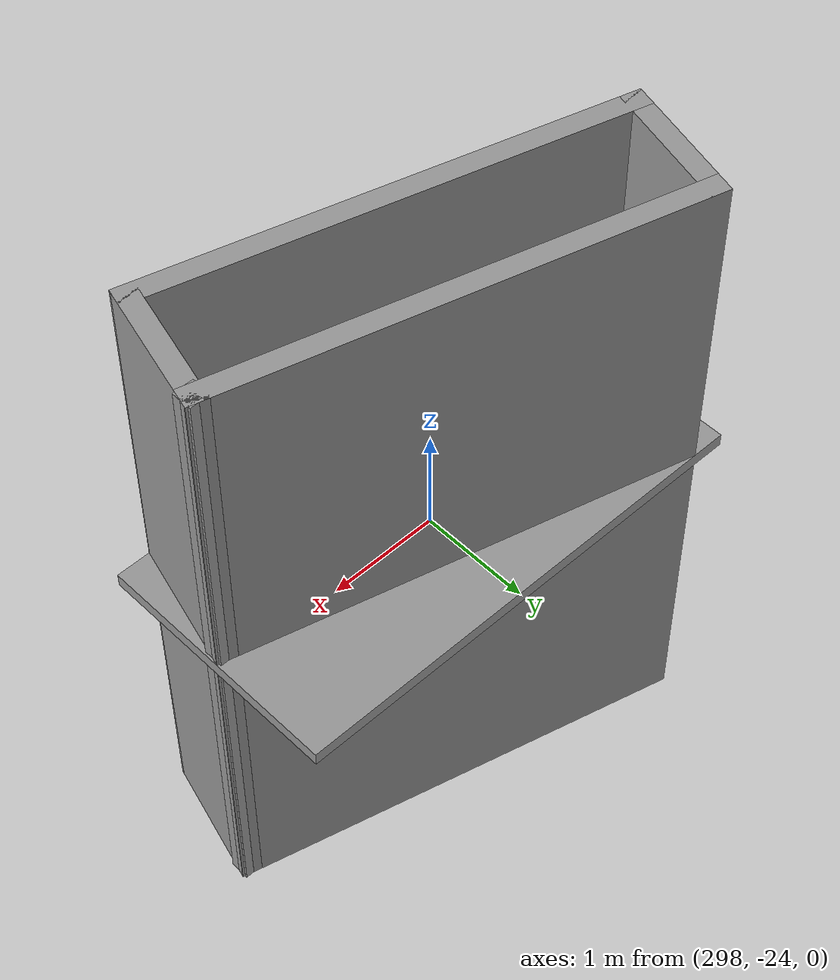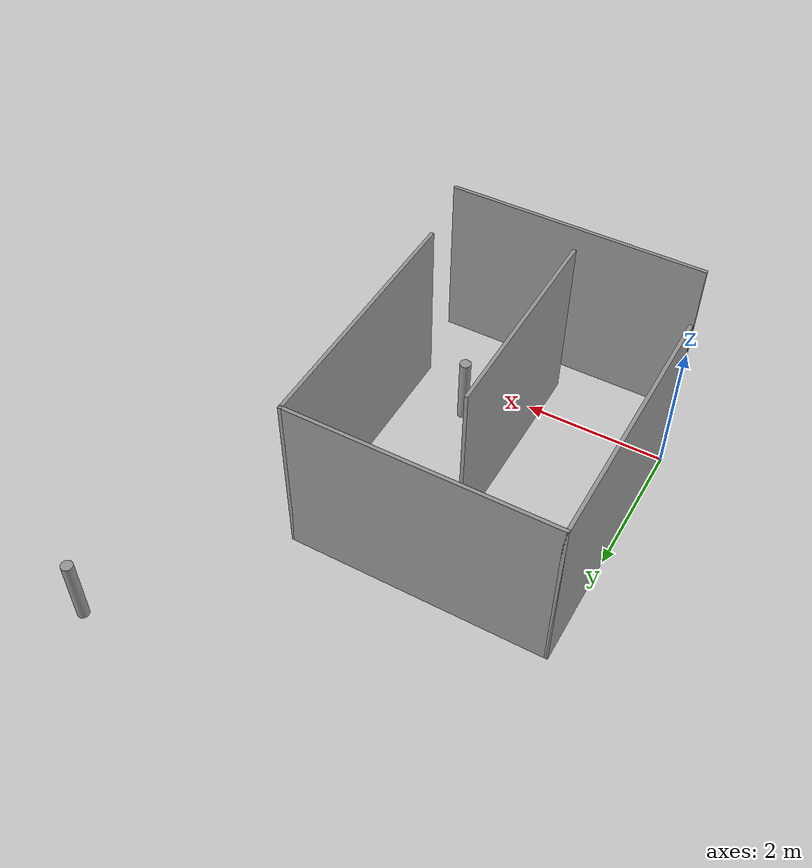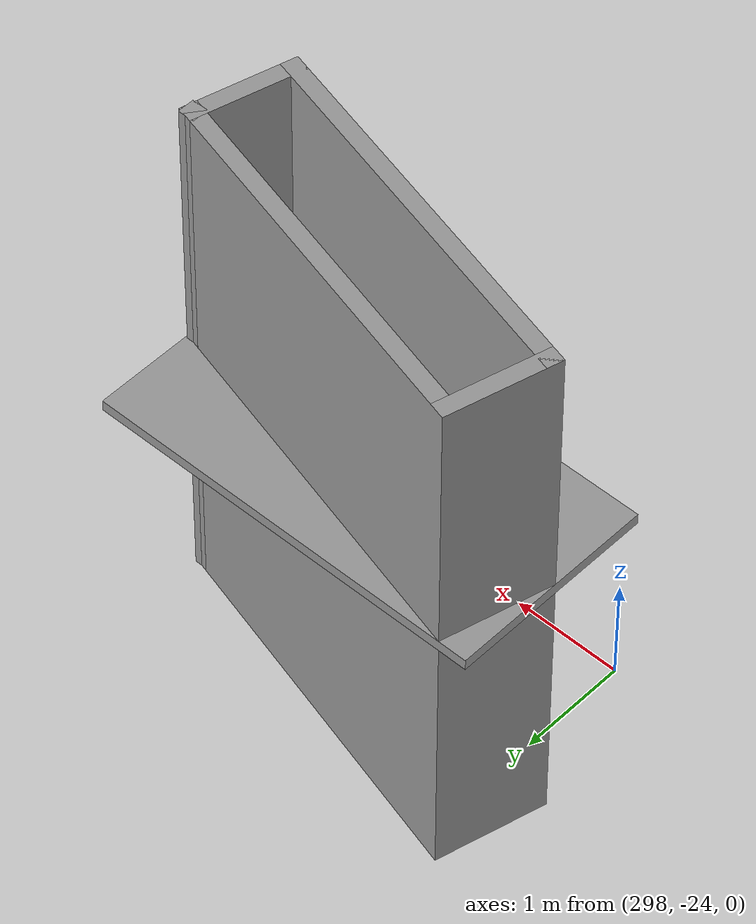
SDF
<sdf version="1.7">
 <world name="default">
  <light name="sun" type="directional">
   <pose>0 0 10 0 -0 0</pose>
   <diffuse>0.8 0.8 0.8 1</diffuse>
   <specular>0.2 0.2 0.2 1</specular>
   <attenuation>
    <range>1000</range>
    <constant>0.9</constant>
    <linear>0.01</linear>
    <quadratic>0.001</quadratic>
   </attenuation>
   <direction>-0.5 0.1 -0.9</direction>
   <spot><inner_angle>0</inner_angle><outer_angle>0</outer_angle><falloff>0</falloff></spot>
  </light>
  <model name="ground_plane">
   <static>1</static>
   <link name="link">
    <collision name="collision">
     <geometry><plane><normal>0 0 1</normal><size>100 100</size></plane></geometry>
     <surface>
      <contact><collide_bitmask>65535</collide_bitmask></contact>
      <friction><ode><mu>100</mu><mu2>50</mu2></ode></friction>
     </surface>
    </collision>
    <visual name="visual">
     <cast_shadows>0</cast_shadows>
     <geometry><plane><normal>0 0 1</normal><size>100 100</size></plane></geometry>
     <material>
      <script><uri>file://media/materials/scripts/gazebo.material</uri><name>Gazebo/Grey</name></script>
     </material>
    </visual>
   </link>
  </model>
  <gravity>0 0 -9.8</gravity>
  <magnetic_field>6e-06 2.3e-05 -4.2e-05</magnetic_field>
  <atmosphere type="adiabatic"/>
  <physics type="ode">
   <max_step_size>0.001</max_step_size>
   <real_time_factor>1</real_time_factor>
   <real_time_update_rate>1000</real_time_update_rate>
  </physics>
  <scene><ambient>0.4 0.4 0.4 1</ambient><background>0.7 0.7 0.7 1</background><shadows>1</shadows></scene>
  <audio><device>default</device></audio>
  <spherical_coordinates>
   <surface_model>EARTH_WGS84</surface_model>
   <latitude_deg>0</latitude_deg>
   <longitude_deg>0</longitude_deg>
   <elevation>0</elevation>
   <heading_deg>0</heading_deg>
  </spherical_coordinates>
  <model name="Untitled">
   <pose>299.349 -20.0463 0 0 -0 0</pose>
   <link name="Floor_0">
    <collision name="Floor_0_Collision">
     <geometry><box><size>3.63956 1.87179 0.1</size></box></geometry>
     <pose>0 0 0.05 0 -0 0</pose>
    </collision>
    <visual name="Floor_0_Visual">
     <pose>0 0 0.05 0 -0 0</pose>
     <geometry><box><size>3.63956 1.87179 0.1</size></box></geometry>
     <material>
      <script><uri>file://media/materials/scripts/gazebo.material</uri><name>Gazebo/Grey</name></script>
      <ambient>1 1 1 1</ambient>
     </material>
     <meta><layer>1</layer></meta>
    </visual>
    <pose>-0 -2.59055 2.5 0 -0 0</pose>
   </link>
   <link name="Wall_0">
    <collision name="Wall_0_Collision">
     <geometry><box><size>3.5 0.15 2.5</size></box></geometry>
     <pose>0 0 1.25 0 -0 0</pose>
    </collision>
    <visual name="Wall_0_Visual">
     <pose>0 0 1.25 0 -0 0</pose>
     <geometry><box><size>3.5 0.15 2.5</size></box></geometry>
     <material>
      <script><uri>file://media/materials/scripts/gazebo.material</uri><name>Gazebo/Grey</name></script>
      <ambient>1 1 1 1</ambient>
     </material>
     <meta><layer>0</layer></meta>
    </visual>
    <pose>0.109998 -2.18003 0 0 -0 2.87979</pose>
   </link>
   <link name="Wall_1">
    <collision name="Wall_1_Collision">
     <geometry><box><size>1 0.15 2.5</size></box></geometry>
     <pose>0 0 1.25 0 -0 0</pose>
    </collision>
    <visual name="Wall_1_Visual">
     <pose>0 0 1.25 0 -0 0</pose>
     <geometry><box><size>1 0.15 2.5</size></box></geometry>
     <material>
      <script><uri>file://media/materials/scripts/gazebo.material</uri><name>Gazebo/Grey</name></script>
      <ambient>1 1 1 1</ambient>
     </material>
     <meta><layer>0</layer></meta>
    </visual>
    <pose>-1.61793 -2.15703 0 0 -0 -1.8326</pose>
   </link>
   <link name="Wall_10">
    <collision name="Wall_10_Collision">
     <geometry><box><size>0.15 0.15 2.5</size></box></geometry>
     <pose>0 0 1.25 0 -0 0</pose>
    </collision>
    <visual name="Wall_10_Visual">
     <pose>0 0 1.25 0 -0 0</pose>
     <geometry><box><size>0.15 0.15 2.5</size></box></geometry>
     <material>
      <script><uri>file://media/materials/scripts/gazebo.material</uri><name>Gazebo/Grey</name></script>
      <ambient>1 1 1 1</ambient>
     </material>
     <meta><layer>1</layer></meta>
    </visual>
    <pose>1.72792 -2.61355 2.5 0 -0 0</pose>
   </link>
   <link name="Wall_2">
    <collision name="Wall_2_Collision">
     <geometry><box><size>3.5 0.15 2.5</size></box></geometry>
     <pose>0 0 1.25 0 -0 0</pose>
    </collision>
    <visual name="Wall_2_Visual">
     <pose>0 0 1.25 0 -0 0</pose>
     <geometry><box><size>3.5 0.15 2.5</size></box></geometry>
     <material>
      <script><uri>file://media/materials/scripts/gazebo.material</uri><name>Gazebo/Grey</name></script>
      <ambient>1 1 1 1</ambient>
     </material>
     <meta><layer>0</layer></meta>
    </visual>
    <pose>-0.109998 -3.00107 0 0 -0 -0.261799</pose>
   </link>
   <link name="Wall_3">
    <collision name="Wall_3_Collision">
     <geometry><box><size>1 0.15 2.5</size></box></geometry>
     <pose>0 0 1.25 0 -0 0</pose>
    </collision>
    <visual name="Wall_3_Visual">
     <pose>0 0 1.25 0 -0 0</pose>
     <geometry><box><size>1 0.15 2.5</size></box></geometry>
     <material>
      <script><uri>file://media/materials/scripts/gazebo.material</uri><name>Gazebo/Grey</name></script>
      <ambient>1 1 1 1</ambient>
     </material>
     <meta><layer>0</layer></meta>
    </visual>
    <pose>1.61793 -3.02407 0 0 -0 1.309</pose>
   </link>
   <link name="Wall_4">
    <collision name="Wall_4_Collision">
     <geometry><box><size>0.15 0.15 2.5</size></box></geometry>
     <pose>0 0 1.25 0 -0 0</pose>
    </collision>
    <visual name="Wall_4_Visual">
     <pose>0 0 1.25 0 -0 0</pose>
     <geometry><box><size>0.15 0.15 2.5</size></box></geometry>
     <material>
      <script><uri>file://media/materials/scripts/gazebo.material</uri><name>Gazebo/Grey</name></script>
      <ambient>1 1 1 1</ambient>
     </material>
     <meta><layer>0</layer></meta>
    </visual>
    <pose>1.72792 -2.61355 0 0 -0 0</pose>
   </link>
   <link name="Wall_6">
    <collision name="Wall_6_Collision">
     <geometry><box><size>3.5 0.15 2.5</size></box></geometry>
     <pose>0 0 1.25 0 -0 0</pose>
    </collision>
    <visual name="Wall_6_Visual">
     <pose>0 0 1.25 0 -0 0</pose>
     <geometry><box><size>3.5 0.15 2.5</size></box></geometry>
     <material>
      <script><uri>file://media/materials/scripts/gazebo.material</uri><name>Gazebo/Grey</name></script>
      <ambient>1 1 1 1</ambient>
     </material>
     <meta><layer>1</layer></meta>
    </visual>
    <pose>0.109998 -2.18003 2.5 0 -0 2.87979</pose>
   </link>
   <link name="Wall_7">
    <collision name="Wall_7_Collision">
     <geometry><box><size>1 0.15 2.5</size></box></geometry>
     <pose>0 0 1.25 0 -0 0</pose>
    </collision>
    <visual name="Wall_7_Visual">
     <pose>0 0 1.25 0 -0 0</pose>
     <geometry><box><size>1 0.15 2.5</size></box></geometry>
     <material>
      <script><uri>file://media/materials/scripts/gazebo.material</uri><name>Gazebo/Grey</name></script>
      <ambient>1 1 1 1</ambient>
     </material>
     <meta><layer>1</layer></meta>
    </visual>
    <pose>-1.61793 -2.15703 2.5 0 -0 -1.8326</pose>
   </link>
   <link name="Wall_8">
    <collision name="Wall_8_Collision">
     <geometry><box><size>3.5 0.15 2.5</size></box></geometry>
     <pose>0 0 1.25 0 -0 0</pose>
    </collision>
    <visual name="Wall_8_Visual">
     <pose>0 0 1.25 0 -0 0</pose>
     <geometry><box><size>3.5 0.15 2.5</size></box></geometry>
     <material>
      <script><uri>file://media/materials/scripts/gazebo.material</uri><name>Gazebo/Grey</name></script>
      <ambient>1 1 1 1</ambient>
     </material>
     <meta><layer>1</layer></meta>
    </visual>
    <pose>-0.109998 -3.00107 2.5 0 -0 -0.261799</pose>
   </link>
   <link name="Wall_9">
    <collision name="Wall_9_Collision">
     <geometry><box><size>1 0.15 2.5</size></box></geometry>
     <pose>0 0 1.25 0 -0 0</pose>
    </collision>
    <visual name="Wall_9_Visual">
     <pose>0 0 1.25 0 -0 0</pose>
     <geometry><box><size>1 0.15 2.5</size></box></geometry>
     <material>
      <script><uri>file://media/materials/scripts/gazebo.material</uri><name>Gazebo/Grey</name></script>
      <ambient>1 1 1 1</ambient>
     </material>
     <meta><layer>1</layer></meta>
    </visual>
    <pose>1.61793 -3.02407 2.5 0 -0 1.309</pose>
   </link>
   <static>1</static>
  </model>
  <model name="Untitled_0_0">
   <link name="Wall_17">
    <pose>0 2.11 0 0 -0 0</pose>
    <visual name="Wall_17_Visual">
     <pose>0 0 1.25 0 -0 0</pose>
     <geometry><box><size>3.66 0.05 2.5</size></box></geometry>
     <material>
      <script><uri>file://media/materials/scripts/gazebo.material</uri><name>Gazebo/Grey</name></script>
      <ambient>1 1 1 1</ambient>
      <shader type="pixel"/>
     </material>
     <meta><layer>0</layer></meta>
    </visual>
    <collision name="Wall_17_Collision">
     <pose>0 0 1.25 0 -0 0</pose>
     <geometry><box><size>3.66 0.05 2.5</size></box></geometry>
     <surface>
      <friction>
       <ode><mu>1</mu><mu2>1</mu2><fdir1>0 0 0</fdir1><slip1>0</slip1><slip2>0</slip2></ode>
       <torsional>
        <coefficient>1</coefficient>
        <patch_radius>0</patch_radius>
        <surface_radius>0</surface_radius>
        <use_patch_radius>1</use_patch_radius>
        <ode><slip>0</slip></ode>
       </torsional>
      </friction>
      <bounce><restitution_coefficient>0</restitution_coefficient><threshold>1e+06</threshold></bounce>
      <contact>
       <collide_without_contact>0</collide_without_contact>
       <collide_without_contact_bitmask>1</collide_without_contact_bitmask>
       <collide_bitmask>1</collide_bitmask>
       <ode>
        <soft_cfm>0</soft_cfm>
        <soft_erp>0.2</soft_erp>
        <kp>1e+13</kp>
        <kd>1</kd>
        <max_vel>0.01</max_vel>
        <min_depth>0</min_depth>
       </ode>
       <bullet>
        <split_impulse>1</split_impulse>
        <split_impulse_penetration_threshold>-0.01</split_impulse_penetration_threshold>
        <soft_cfm>0</soft_cfm>
        <soft_erp>0.2</soft_erp>
        <kp>1e+13</kp>
        <kd>1</kd>
       </bullet>
      </contact>
     </surface>
    </collision>
   </link>
   <link name="Wall_17_clone">
    <pose>0.196713 -2.56803 0 0 -0 0</pose>
    <visual name="Wall_17_Visual">
     <pose>0 0 1.25 0 -0 0</pose>
     <geometry><box><size>3.66 0.05 2.5</size></box></geometry>
     <material>
      <script><uri>file://media/materials/scripts/gazebo.material</uri><name>Gazebo/Grey</name></script>
      <ambient>1 1 1 1</ambient>
      <shader type="pixel"/>
     </material>
     <meta><layer>0</layer></meta>
    </visual>
    <collision name="Wall_17_Collision">
     <pose>0 0 1.25 0 -0 0</pose>
     <geometry><box><size>3.66 0.05 2.5</size></box></geometry>
     <surface>
      <friction>
       <ode><mu>1</mu><mu2>1</mu2><fdir1>0 0 0</fdir1><slip1>0</slip1><slip2>0</slip2></ode>
       <torsional>
        <coefficient>1</coefficient>
        <patch_radius>0</patch_radius>
        <surface_radius>0</surface_radius>
        <use_patch_radius>1</use_patch_radius>
        <ode><slip>0</slip></ode>
       </torsional>
      </friction>
      <bounce><restitution_coefficient>0</restitution_coefficient><threshold>1e+06</threshold></bounce>
      <contact>
       <collide_without_contact>0</collide_without_contact>
       <collide_without_contact_bitmask>1</collide_without_contact_bitmask>
       <collide_bitmask>1</collide_bitmask>
       <ode>
        <soft_cfm>0</soft_cfm>
        <soft_erp>0.2</soft_erp>
        <kp>1e+13</kp>
        <kd>1</kd>
        <max_vel>0.01</max_vel>
        <min_depth>0</min_depth>
       </ode>
       <bullet>
        <split_impulse>1</split_impulse>
        <split_impulse_penetration_threshold>-0.01</split_impulse_penetration_threshold>
        <soft_cfm>0</soft_cfm>
        <soft_erp>0.2</soft_erp>
        <kp>1e+13</kp>
        <kd>1</kd>
       </bullet>
      </contact>
     </surface>
    </collision>
   </link>
   <link name="Wall_2">
    <pose>0.025 -0.61 0 0 -0 1.5708</pose>
    <visual name="Wall_2_Visual">
     <pose>0 0 1.25 0 -0 0</pose>
     <geometry><box><size>3.05 0.05 2.5</size></box></geometry>
     <material>
      <script><uri>file://media/materials/scripts/gazebo.material</uri><name>Gazebo/Grey</name></script>
      <ambient>1 1 1 1</ambient>
      <shader type="pixel"/>
     </material>
     <meta><layer>0</layer></meta>
    </visual>
    <collision name="Wall_2_Collision">
     <pose>0 0 1.25 0 -0 0</pose>
     <geometry><box><size>3.05 0.05 2.5</size></box></geometry>
     <surface>
      <friction>
       <ode><mu>1</mu><mu2>1</mu2><fdir1>0 0 0</fdir1><slip1>0</slip1><slip2>0</slip2></ode>
       <torsional>
        <coefficient>1</coefficient>
        <patch_radius>0</patch_radius>
        <surface_radius>0</surface_radius>
        <use_patch_radius>1</use_patch_radius>
        <ode><slip>0</slip></ode>
       </torsional>
      </friction>
      <bounce><restitution_coefficient>0</restitution_coefficient><threshold>1e+06</threshold></bounce>
      <contact>
       <collide_without_contact>0</collide_without_contact>
       <collide_without_contact_bitmask>1</collide_without_contact_bitmask>
       <collide_bitmask>1</collide_bitmask>
       <ode>
        <soft_cfm>0</soft_cfm>
        <soft_erp>0.2</soft_erp>
        <kp>1e+13</kp>
        <kd>1</kd>
        <max_vel>0.01</max_vel>
        <min_depth>0</min_depth>
       </ode>
       <bullet>
        <split_impulse>1</split_impulse>
        <split_impulse_penetration_threshold>-0.01</split_impulse_penetration_threshold>
        <soft_cfm>0</soft_cfm>
        <soft_erp>0.2</soft_erp>
        <kp>1e+13</kp>
        <kd>1</kd>
       </bullet>
      </contact>
     </surface>
    </collision>
   </link>
   <link name="Wall_22">
    <pose>1.805 0.305 0 0 -0 1.5708</pose>
    <visual name="Wall_22_Visual">
     <pose>0 0 1.25 0 -0 0</pose>
     <geometry><box><size>3.66 0.05 2.5</size></box></geometry>
     <material>
      <script><uri>file://media/materials/scripts/gazebo.material</uri><name>Gazebo/Grey</name></script>
      <ambient>1 1 1 1</ambient>
      <shader type="pixel"/>
     </material>
     <meta><layer>0</layer></meta>
    </visual>
    <collision name="Wall_22_Collision">
     <pose>0 0 1.25 0 -0 0</pose>
     <geometry><box><size>3.66 0.05 2.5</size></box></geometry>
     <surface>
      <friction>
       <ode><mu>1</mu><mu2>1</mu2><fdir1>0 0 0</fdir1><slip1>0</slip1><slip2>0</slip2></ode>
       <torsional>
        <coefficient>1</coefficient>
        <patch_radius>0</patch_radius>
        <surface_radius>0</surface_radius>
        <use_patch_radius>1</use_patch_radius>
        <ode><slip>0</slip></ode>
       </torsional>
      </friction>
      <bounce><restitution_coefficient>0</restitution_coefficient><threshold>1e+06</threshold></bounce>
      <contact>
       <collide_without_contact>0</collide_without_contact>
       <collide_without_contact_bitmask>1</collide_without_contact_bitmask>
       <collide_bitmask>1</collide_bitmask>
       <ode>
        <soft_cfm>0</soft_cfm>
        <soft_erp>0.2</soft_erp>
        <kp>1e+13</kp>
        <kd>1</kd>
        <max_vel>0.01</max_vel>
        <min_depth>0</min_depth>
       </ode>
       <bullet>
        <split_impulse>1</split_impulse>
        <split_impulse_penetration_threshold>-0.01</split_impulse_penetration_threshold>
        <soft_cfm>0</soft_cfm>
        <soft_erp>0.2</soft_erp>
        <kp>1e+13</kp>
        <kd>1</kd>
       </bullet>
      </contact>
     </surface>
    </collision>
   </link>
   <link name="Wall_7">
    <pose>-1.805 0.305 0 0 -0 1.5708</pose>
    <visual name="Wall_7_Visual">
     <pose>0 0 1.25 0 -0 0</pose>
     <geometry><box><size>3.66 0.05 2.5</size></box></geometry>
     <material>
      <script><uri>file://media/materials/scripts/gazebo.material</uri><name>Gazebo/Grey</name></script>
      <ambient>1 1 1 1</ambient>
      <shader type="pixel"/>
     </material>
     <meta><layer>0</layer></meta>
    </visual>
    <collision name="Wall_7_Collision">
     <pose>0 0 1.25 0 -0 0</pose>
     <geometry><box><size>3.66 0.05 2.5</size></box></geometry>
     <surface>
      <friction>
       <ode><mu>1</mu><mu2>1</mu2><fdir1>0 0 0</fdir1><slip1>0</slip1><slip2>0</slip2></ode>
       <torsional>
        <coefficient>1</coefficient>
        <patch_radius>0</patch_radius>
        <surface_radius>0</surface_radius>
        <use_patch_radius>1</use_patch_radius>
        <ode><slip>0</slip></ode>
       </torsional>
      </friction>
      <bounce><restitution_coefficient>0</restitution_coefficient><threshold>1e+06</threshold></bounce>
      <contact>
       <collide_without_contact>0</collide_without_contact>
       <collide_without_contact_bitmask>1</collide_without_contact_bitmask>
       <collide_bitmask>1</collide_bitmask>
       <ode>
        <soft_cfm>0</soft_cfm>
        <soft_erp>0.2</soft_erp>
        <kp>1e+13</kp>
        <kd>1</kd>
        <max_vel>0.01</max_vel>
        <min_depth>0</min_depth>
       </ode>
       <bullet>
        <split_impulse>1</split_impulse>
        <split_impulse_penetration_threshold>-0.01</split_impulse_penetration_threshold>
        <soft_cfm>0</soft_cfm>
        <soft_erp>0.2</soft_erp>
        <kp>1e+13</kp>
        <kd>1</kd>
       </bullet>
      </contact>
     </surface>
    </collision>
   </link>
   <static>1</static>
   <pose>1.83683 1.51982 0 0 -0 0</pose>
  </model>
  <model name="unit_cylinder">
   <link name="link">
    <inertial>
     <mass>1</mass>
     <inertia><ixx>0.145833</ixx><ixy>0</ixy><ixz>0</ixz><iyy>0.145833</iyy><iyz>0</iyz><izz>0.125</izz></inertia>
    </inertial>
    <visual name="visual">
     <geometry><cylinder><radius>0.08</radius><length>1</length></cylinder></geometry>
     <material>
      <script><name>Gazebo/Grey</name><uri>file://media/materials/scripts/gazebo.material</uri></script>
      <shader type="pixel"><normal_map>__default__</normal_map></shader>
      <ambient>0.3 0.3 0.3 1</ambient>
      <diffuse>0.7 0.7 0.7 1</diffuse>
      <specular>0.01 0.01 0.01 1</specular>
      <emissive>0 0 0 1</emissive>
     </material>
    </visual>
    <collision name="collision">
     <geometry><cylinder><radius>0.08</radius><length>1</length></cylinder></geometry>
     <surface>
      <friction>
       <ode><mu>1</mu><mu2>1</mu2><fdir1>0 0 0</fdir1><slip1>0</slip1><slip2>0</slip2></ode>
       <torsional>
        <coefficient>1</coefficient>
        <patch_radius>0</patch_radius>
        <surface_radius>0</surface_radius>
        <use_patch_radius>1</use_patch_radius>
        <ode><slip>0</slip></ode>
       </torsional>
      </friction>
      <bounce><restitution_coefficient>0</restitution_coefficient><threshold>1e+06</threshold></bounce>
      <contact>
       <collide_without_contact>0</collide_without_contact>
       <collide_without_contact_bitmask>1</collide_without_contact_bitmask>
       <collide_bitmask>1</collide_bitmask>
       <ode>
        <soft_cfm>0</soft_cfm>
        <soft_erp>0.2</soft_erp>
        <kp>1e+13</kp>
        <kd>1</kd>
        <max_vel>0.01</max_vel>
        <min_depth>0</min_depth>
       </ode>
       <bullet>
        <split_impulse>1</split_impulse>
        <split_impulse_penetration_threshold>-0.01</split_impulse_penetration_threshold>
        <soft_cfm>0</soft_cfm>
        <soft_erp>0.2</soft_erp>
        <kp>1e+13</kp>
        <kd>1</kd>
       </bullet>
      </contact>
     </surface>
    </collision>
   </link>
   <static>0</static>
   <pose>5.28791 5.89136 0.499991 0 -0 0.000515</pose>
  </model>
  <model name="unit_cylinder_clone_clone_clone_0">
   <link name="link">
    <inertial>
     <mass>1</mass>
     <inertia><ixx>0.145833</ixx><ixy>0</ixy><ixz>0</ixz><iyy>0.145833</iyy><iyz>0</iyz><izz>0.125</izz></inertia>
    </inertial>
    <visual name="visual">
     <geometry><cylinder><radius>0.08</radius><length>1</length></cylinder></geometry>
     <material>
      <script><name>Gazebo/Grey</name><uri>file://media/materials/scripts/gazebo.material</uri></script>
      <shader type="pixel"><normal_map>__default__</normal_map></shader>
      <ambient>0.3 0.3 0.3 1</ambient>
      <diffuse>0.7 0.7 0.7 1</diffuse>
      <specular>0.01 0.01 0.01 1</specular>
      <emissive>0 0 0 1</emissive>
     </material>
    </visual>
    <collision name="collision">
     <geometry><cylinder><radius>0.08</radius><length>1</length></cylinder></geometry>
     <surface>
      <friction>
       <ode><mu>1</mu><mu2>1</mu2><fdir1>0 0 0</fdir1><slip1>0</slip1><slip2>0</slip2></ode>
       <torsional>
        <coefficient>1</coefficient>
        <patch_radius>0</patch_radius>
        <surface_radius>0</surface_radius>
        <use_patch_radius>1</use_patch_radius>
        <ode><slip>0</slip></ode>
       </torsional>
      </friction>
      <bounce><restitution_coefficient>0</restitution_coefficient><threshold>1e+06</threshold></bounce>
      <contact>
       <collide_without_contact>0</collide_without_contact>
       <collide_without_contact_bitmask>1</collide_without_contact_bitmask>
       <collide_bitmask>1</collide_bitmask>
       <ode>
        <soft_cfm>0</soft_cfm>
        <soft_erp>0.2</soft_erp>
        <kp>1e+13</kp>
        <kd>1</kd>
        <max_vel>0.01</max_vel>
        <min_depth>0</min_depth>
       </ode>
       <bullet>
        <split_impulse>1</split_impulse>
        <split_impulse_penetration_threshold>-0.01</split_impulse_penetration_threshold>
        <soft_cfm>0</soft_cfm>
        <soft_erp>0.2</soft_erp>
        <kp>1e+13</kp>
        <kd>1</kd>
       </bullet>
      </contact>
     </surface>
    </collision>
   </link>
   <static>0</static>
   <pose>2.77378 0.581645 0.499991 0 -0 0.000432</pose>
  </model>
 </world>
</sdf>
